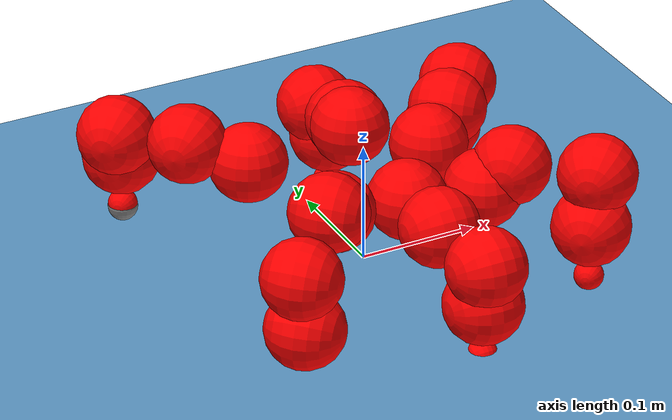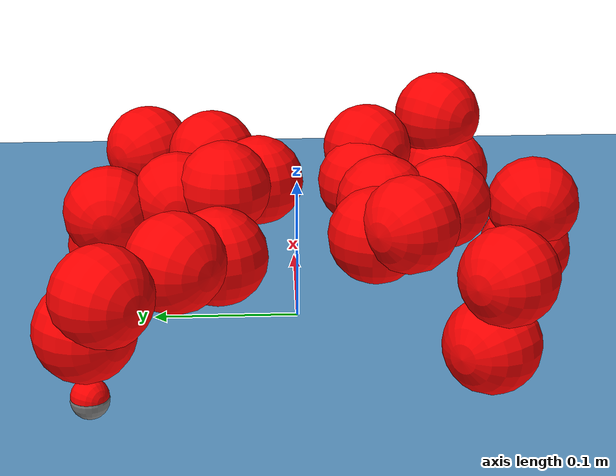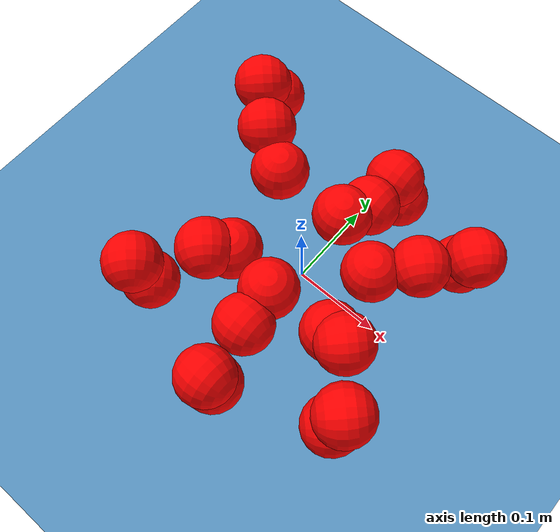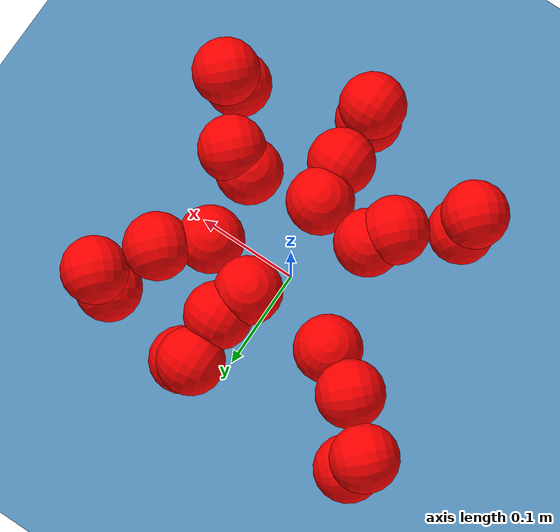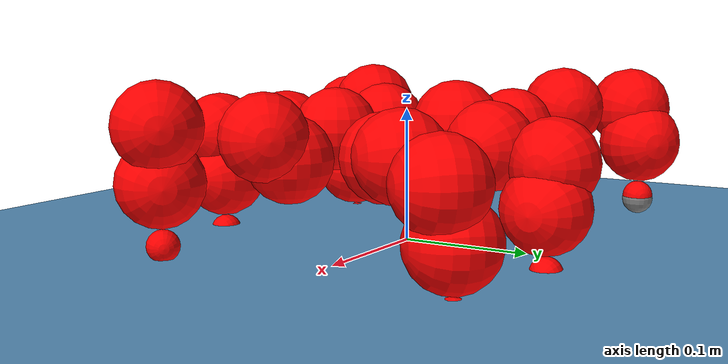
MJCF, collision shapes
<mujoco model="Golem">
  <compiler angle="radian" assetdir="assets" balanceinertia="true" inertiafromgeom="false"/>

  <option timestep="0.005" density="1.2" viscosity="2e-05"/>

  <size nkey="1"/>

  <visual>
    <quality shadowsize="8192"/>
    <map shadowclip="0.5"/>
  </visual>

  <default>
    <default class="/">
      <joint armature="0.01" damping="0.01" frictionloss="0.01"/>
      <geom contype="0" conaffinity="0" group="1" solref="-1000 -80"/>
      <site size="0.01 0.005 0.005" group="5"/>
      <general forcelimited="true" biastype="affine" gainprm="25" biasprm="0 -25 -0.5"/>
      <default class="visual">
        <geom type="mesh" group="2"/>
      </default>
      <default class="collision">
        <geom group="3"/>
      </default>
      <default class="foot">
        <geom size="0.01 0 0" condim="6" group="4" priority="1" solimp="0.015 1 0.01"/>
      </default>
      <default class="reward_collision_sphere">
        <geom group="5" rgba="1 0 0 1"/>
      </default>
    </default>
  </default>

  <asset>
    <texture type="skybox" colorspace="auto" name="//unnamed_texture_0" builtin="gradient" rgb1="0.95 0.95 0.95" rgb2="0.95 0.95 0.95" width="100" height="600"/>
    <texture type="2d" colorspace="auto" name="texplane" builtin="checker" rgb1="0.345 0.575 0.748" rgb2="0.345 0.575 0.748" markrgb="1 1 1" width="512" height="512"/>
    <material name="MatPlane" class="/" texture="texplane" texuniform="true" texrepeat="2 2" specular="0.9"/>
    <mesh name="body" class="/" file="body.stl" scale="0.001 0.001 0.001"/>
    <mesh name="coxa" class="/" file="coxa.stl" scale="0.001 0.001 0.001"/>
    <mesh name="femur" class="/" file="femur.stl" scale="0.001 0.001 0.001"/>
    <mesh name="tibia" class="/" file="tibia.stl" scale="0.001 0.001 0.001"/>
    <mesh name="tarsus" class="/" file="tarsus.stl" scale="0.001 0.001 0.001"/>
  </asset>

  <worldbody>
    <geom name="floor" class="/" size="100 100 0.125" type="plane" group="0" material="MatPlane"/>
    <light name="toplight_shadow" class="/" pos="0 0 5" dir="0.0990148 0.0990148 -0.990148" type="directional" ambient="0.04 0.04 0.04" diffuse="0.55 0.55 0.55" specular="0.12 0.12 0.12"/>
    <light name="toplight_fill" class="/" pos="0 0 5" dir="0.0990148 0.0990148 -0.990148" type="directional" castshadow="false" ambient="0.04 0.04 0.04" diffuse="0.3 0.3 0.3" specular="0.08 0.08 0.08"/>
    <body name="trunk" pos="-0.000608319 0.000537153 -0.00679955" quat="0.999961 0.00411516 0.00228996 0.00751833">
      <inertial pos="-0.00753947 0.000884932 -0.00549037" quat="0.999998 0.00107901 -0.00137745 0.000850683" mass="1.54979" diaginertia="0.00011572 0.000874549 0.0508172"/>
      <joint name="//unnamed_joint_0" type="free"/>
      <geom name="//unnamed_geom_1" class="/" pos="0 0 0.0899315" quat="1 0 0 0" type="mesh" rgba="0.9 0.9 0.9 1" mesh="body"/>
      <site name="imu" class="/" pos="-0.0302663 0.0571457 0.133645" size="0.00804948"/>
      <camera name="track" class="/" pos="0 -1.18861 0" quat="0.707107 0.707107 0 0" mode="trackcom"/>
      <camera name="ego_camera" class="/" pos="0.0539969 0 0.140518" quat="-0.5 -0.5 0.5 0.5"/>
      <body name="coxa_RR" pos="-0.060381 -0.058577 0.0896412" quat="0.383238 -0.00350694 0.00803674 -0.923608">
        <inertial pos="0.00277215 0.00132174 -0.0138245" quat="0.998106 0.0506751 0.0304258 0.0170287" mass="0.0924836" diaginertia="0.000102284 0.000593971 0.0464595"/>
        <joint name="coxa_joint_RR" class="/" pos="0 0 0" axis="-0.0088304 0.0193768 -0.999773" range="-2.85869 3.46023" armature="0.00800037" damping="0" frictionloss="0.00338456"/>
        <geom name="//unnamed_geom_2" class="/" type="mesh" rgba="0.2 0.2 0.2 1" mesh="coxa"/>
        <geom name="//unnamed_geom_3" class="reward_collision_sphere" size="0.0321979" pos="-0.0124608 0 0"/>
        <body name="femur_RR" pos="0.0132002 0.00268077 0.014076" quat="0.499842 -0.501141 0.501255 0.497754">
          <inertial pos="-0.000305264 -0.00242797 0.00627763" quat="0.999837 0.00876517 0.00420454 0.015211" mass="0.0994522" diaginertia="0.000107003 0.000635667 0.0596443"/>
          <joint name="femur_joint_RR" class="/" pos="0 0 0" axis="0.0354987 -0.0360143 -0.998721" range="-3.45892 3.08356" armature="0.0138622" damping="0.0579324" frictionloss="0.0112005"/>
          <geom name="//unnamed_geom_4" class="/" type="mesh" rgba="0.9 0.9 0.9 1" mesh="femur"/>
          <geom name="//unnamed_geom_5" class="reward_collision_sphere" size="0.0321979"/>
          <body name="tibia_RR" pos="0.0134002 -0.0768037 0.00300724" quat="0.000658325 0.999978 -0.00191344 -0.00629678">
            <inertial pos="-0.014484 -0.0112437 0.00101435" quat="0.999824 -0.00442273 0.00882142 0.0159324" mass="0.0863002" diaginertia="0.000137288 0.000754338 0.0654994"/>
            <joint name="tibia_joint_RR" class="/" pos="0 0 0" axis="-0.0441565 0.0686337 0.996664" range="-3.46776 3.07949" armature="0.0131714" damping="0.0646369" frictionloss="0.0102007"/>
            <geom name="//unnamed_geom_6" class="/" type="mesh" rgba="0.2 0.2 0.2 1" mesh="tibia"/>
            <geom name="//unnamed_geom_7" class="reward_collision_sphere" size="0.0321979"/>
            <body name="tarsus_RR" pos="0.0502722 -0.00998787 -0.00141647" quat="0.99999 -0.00193763 0.00213383 0.00329004">
              <inertial pos="0.0230874 0.0046293 -0.00469185" quat="0.500026 0.49431 0.509603 0.495919" mass="0.0941048" diaginertia="9.27742e-05 0.00072913 0.04025"/>
              <joint name="tarsus_joint_RR" class="/" pos="0 0 0" axis="0.0725121 -0.00831017 0.997333" range="-2.93749 3.24374" armature="0.0103259" damping="0" frictionloss="0.00570604"/>
              <geom name="//unnamed_geom_8" class="/" type="mesh" rgba="0.9 0.9 0.9 1" mesh="tarsus"/>
              <geom name="foot_1" class="foot" size="0.00558601" pos="0.0465204 0 0" quat="0 -0.707107 0 0.707107"/>
              <geom name="//unnamed_geom_10" class="reward_collision_sphere" size="0.0321979"/>
              <geom name="//unnamed_geom_11" class="reward_collision_sphere" size="0.0120742" pos="0.0446513 0 0"/>
              <site name="foot_1" class="foot" pos="0.0465204 0 0" quat="0 -0.707107 0 0.707107" size="0.00804948"/>
            </body>
          </body>
        </body>
      </body>
      <body name="coxa_RM" pos="0.00653038 -0.0716713 0.0898697" quat="0.703734 -0.0051066 -0.00399807 -0.710434">
        <inertial pos="-0.0101125 0.015275 -0.00824462" quat="0.999825 0.00860704 -0.0108955 0.0125737" mass="0.13568" diaginertia="0.000163029 0.000839808 0.0615573"/>
        <joint name="coxa_joint_RM" class="/" pos="0 0 0" axis="-0.0546607 0.0523349 -0.997133" range="-3.12539 2.849" armature="0.00179077" damping="0.0137795" frictionloss="0.013296"/>
        <geom name="//unnamed_geom_12" class="/" type="mesh" rgba="0.2 0.2 0.2 1" mesh="coxa"/>
        <geom name="//unnamed_geom_13" class="reward_collision_sphere" size="0.0321979" pos="-0.0124608 0 0"/>
        <body name="femur_RM" pos="0.0307583 0.00477193 -0.00392377" quat="0.499873 -0.499963 0.499374 0.500789">
          <inertial pos="-0.0121209 -0.00681456 -0.00441741" quat="0.999429 0.0317419 0.0101465 0.00565106" mass="0.0762297" diaginertia="0.000124464 0.000689801 0.0510387"/>
          <joint name="femur_joint_RM" class="/" pos="0 0 0" axis="-0.030129 0.0290416 -0.999124" range="-2.93084 3.19022" armature="0.0102145" damping="0" frictionloss="0.00298383"/>
          <geom name="//unnamed_geom_14" class="/" type="mesh" rgba="0.9 0.9 0.9 1" mesh="femur"/>
          <geom name="//unnamed_geom_15" class="reward_collision_sphere" size="0.0321979"/>
          <body name="tibia_RM" pos="0.00413807 -0.0628734 0.00590604" quat="-0.000509748 0.999997 -0.000772616 0.00222023">
            <inertial pos="-0.00899949 0.00298506 0.0154774" quat="0.99723 0.0378449 0.048887 -0.0413655" mass="0.105294" diaginertia="9.62222e-05 0.000690322 0.0434577"/>
            <joint name="tibia_joint_RM" class="/" pos="0 0 0" axis="-0.000466062 0.00209929 0.999998" range="-3.25801 3.32833" armature="0.00241949" damping="0" frictionloss="0.00109769"/>
            <geom name="//unnamed_geom_16" class="/" type="mesh" rgba="0.2 0.2 0.2 1" mesh="tibia"/>
            <geom name="//unnamed_geom_17" class="reward_collision_sphere" size="0.0321979"/>
            <body name="tarsus_RM" pos="0.0350433 -0.00454147 -0.000639526" quat="1 5.42237e-05 -9.60562e-05 -9.49434e-05">
              <inertial pos="0.0120796 -0.00140464 0.00473737" quat="0.500025 0.453244 0.542655 0.50007" mass="0.0956616" diaginertia="0.000106963 0.000648909 0.0627659"/>
              <joint name="tarsus_joint_RM" class="/" pos="0 0 0" axis="-0.00498895 -0.000896409 0.999987" range="-3.46879 2.92997" armature="0.00128934" damping="0.0104671" frictionloss="0.00680266"/>
              <geom name="//unnamed_geom_18" class="/" type="mesh" rgba="0.9 0.9 0.9 1" mesh="tarsus"/>
              <geom name="foot_2" class="foot" size="0.00319305" pos="0.0465204 0 0" quat="0 -0.707107 0 0.707107"/>
              <geom name="//unnamed_geom_20" class="reward_collision_sphere" size="0.0321979"/>
              <geom name="//unnamed_geom_21" class="reward_collision_sphere" size="0.0120742" pos="0.0446513 0 0"/>
              <site name="foot_2" class="foot" pos="0.0465204 0 0" quat="0 -0.707107 0 0.707107" size="0.00804948"/>
            </body>
          </body>
        </body>
      </body>
      <body name="coxa_RF" pos="0.0887529 -0.0595628 0.0755841" quat="0.923859 0.000153016 -0.000499381 -0.382732">
        <inertial pos="0.0133909 0.0179929 -0.0122532" quat="0.997871 -0.0362083 0.0348651 0.0415633" mass="0.113162" diaginertia="0.000102597 0.000677599 0.0544203"/>
        <joint name="coxa_joint_RF" class="/" pos="0 0 0" axis="0.0157595 0.00603721 -0.999858" stiffness="0.000948682" range="-2.94863 2.81668" armature="0.0129001" damping="0" frictionloss="0.00996684"/>
        <geom name="//unnamed_geom_22" class="/" type="mesh" rgba="0.2 0.2 0.2 1" mesh="coxa"/>
        <geom name="//unnamed_geom_23" class="reward_collision_sphere" size="0.0321979" pos="-0.0124608 0 0"/>
        <body name="femur_RF" pos="0.00696406 0.0120871 0.0176936" quat="0.501251 -0.504867 0.493983 0.499837">
          <inertial pos="-0.000507544 0.013249 -0.0158814" quat="0.996599 -0.0739396 0.0236031 -0.027683" mass="0.115414" diaginertia="0.000144802 0.000912049 0.0602248"/>
          <joint name="femur_joint_RF" class="/" pos="0 0 0" axis="0.0396786 0.014041 -0.999114" range="-3.39433 3.13402" armature="0.00495755" damping="0.0581615" frictionloss="0.0144282"/>
          <geom name="//unnamed_geom_24" class="/" type="mesh" rgba="0.9 0.9 0.9 1" mesh="femur"/>
          <geom name="//unnamed_geom_25" class="reward_collision_sphere" size="0.0321979"/>
          <body name="tibia_RF" pos="-0.00880502 -0.0715473 -0.0100805" quat="-0.00643356 0.999978 0.000682363 0.00137478">
            <inertial pos="0.00153181 -0.0110446 0.00871931" quat="0.998024 0.00652245 0.0491503 -0.0386006" mass="0.100913" diaginertia="0.000119262 0.000809885 0.0646105"/>
            <joint name="tibia_joint_RF" class="/" pos="0 0 0" axis="-0.0117715 -0.0750484 0.99711" range="-3.0118 3.17183" armature="0.0118868" damping="0" frictionloss="0.00792868"/>
            <geom name="//unnamed_geom_26" class="/" type="mesh" rgba="0.2 0.2 0.2 1" mesh="tibia"/>
            <geom name="//unnamed_geom_27" class="reward_collision_sphere" size="0.0321979"/>
            <body name="tarsus_RF" pos="0.0415416 -0.00128831 0.0108319" quat="0.999969 -0.0016629 -0.00597889 -0.00485819">
              <inertial pos="0.0405608 -0.000348378 -0.017642" quat="0.503006 0.443177 0.528117 0.521221" mass="0.143071" diaginertia="0.000119134 0.000950002 0.0632123"/>
              <joint name="tarsus_joint_RF" class="/" pos="0 0 0" axis="-0.0015978 0.082255 0.99661" range="-3.47048 2.99975" armature="0.00784643" damping="0" frictionloss="0.00300103"/>
              <geom name="//unnamed_geom_28" class="/" type="mesh" rgba="0.9 0.9 0.9 1" mesh="tarsus"/>
              <geom name="foot_3" class="foot" size="0.00573527" pos="0.0465204 0 0" quat="0 -0.707107 0 0.707107"/>
              <geom name="//unnamed_geom_30" class="reward_collision_sphere" size="0.0321979"/>
              <geom name="//unnamed_geom_31" class="reward_collision_sphere" size="0.0120742" pos="0.0446513 0 0"/>
              <site name="foot_3" class="foot" pos="0.0465204 0 0" quat="0 -0.707107 0 0.707107" size="0.00804948"/>
            </body>
          </body>
        </body>
      </body>
      <body name="coxa_LR" pos="-0.0834616 0.0621977 0.0864894" quat="0.380651 0.00120884 0.00769048 0.924686">
        <inertial pos="-0.0154323 -0.001398 0.0118958" quat="0.997633 0.0268514 -0.0166871 -0.0610629" mass="0.100816" diaginertia="0.000115654 0.000720571 0.0532365"/>
        <joint name="coxa_joint_LR" class="/" pos="0 0 0" axis="-0.0201717 0.0789885 -0.996671" stiffness="0.0235194" range="-3.01492 3.05851" armature="0.0120934" damping="0.0415185" frictionloss="0.00882733"/>
        <geom name="//unnamed_geom_32" class="/" type="mesh" rgba="0.2 0.2 0.2 1" mesh="coxa"/>
        <geom name="//unnamed_geom_33" class="reward_collision_sphere" size="0.0321979" pos="-0.0124608 0 0"/>
        <body name="femur_LR" pos="0.0348033 0.0100837 0.0144293" quat="0.505153 -0.494577 0.501576 0.498633">
          <inertial pos="-0.00853505 0.00477461 -0.00181631" quat="0.999951 0.00883931 0.00436646 0.000308952" mass="0.11674" diaginertia="0.000128629 0.000780383 0.0502484"/>
          <joint name="femur_joint_LR" class="/" pos="0 0 0" axis="0.00387637 -0.00571342 0.999976" range="-3.34469 2.78179" armature="0.00884083" damping="0" frictionloss="0.00106942"/>
          <geom name="//unnamed_geom_34" class="/" type="mesh" rgba="0.9 0.9 0.9 1" mesh="femur"/>
          <geom name="//unnamed_geom_35" class="reward_collision_sphere" size="0.0321979"/>
          <body name="tibia_LR" pos="0.00195388 -0.0594743 0.000447663" quat="0.00175921 0.999997 -0.000814352 -0.00131814">
            <inertial pos="-0.00740106 0.00615851 -0.00567224" quat="0.999354 -0.020558 0.0279595 -0.00935789" mass="0.127066" diaginertia="0.000133074 0.000666486 0.0592798"/>
            <joint name="tibia_joint_LR" class="/" pos="0 0 0" axis="0.00215729 0.00309257 -0.999993" stiffness="0.032683" range="-3.28992 3.44466" armature="0.015248" damping="0" frictionloss="0.012362"/>
            <geom name="//unnamed_geom_36" class="/" type="mesh" rgba="0.2 0.2 0.2 1" mesh="tibia"/>
            <geom name="//unnamed_geom_37" class="reward_collision_sphere" size="0.0321979"/>
            <body name="tarsus_LR" pos="0.0260568 0.00203154 0.0150836" quat="0.999994 0.00134723 0.00241391 -0.00221779">
              <inertial pos="0.0219327 0.00861856 0.0012074" quat="0.497296 0.50966 0.490977 0.501881" mass="0.0950328" diaginertia="0.000113315 0.000759596 0.049041"/>
              <joint name="tarsus_joint_LR" class="/" pos="0 0 0" axis="-0.00719791 0.0348162 -0.999368" stiffness="0.0481182" range="-3.46041 3.14333" armature="0.00771322" damping="0.0915264" frictionloss="0.0059928"/>
              <geom name="//unnamed_geom_38" class="/" type="mesh" rgba="0.9 0.9 0.9 1" mesh="tarsus"/>
              <geom name="foot_4" class="foot" size="0.0123245" pos="0.0465204 0 0" quat="0.707107 0 -0.707107 0"/>
              <geom name="//unnamed_geom_40" class="reward_collision_sphere" size="0.0321979"/>
              <geom name="//unnamed_geom_41" class="reward_collision_sphere" size="0.0120742" pos="0.0446513 0 0"/>
              <site name="foot_4" class="foot" pos="0.0465204 0 0" quat="0.707107 0 -0.707107 0" size="0.00804948"/>
            </body>
          </body>
        </body>
      </body>
      <body name="coxa_LM" pos="0.0143546 0.062095 0.0984279" quat="0.701599 0.00436028 -0.000910082 0.712558">
        <inertial pos="0.00936032 -0.000468595 -0.0116054" quat="0.999759 -0.0168447 0.0137303 0.00301007" mass="0.089365" diaginertia="7.52628e-05 0.000570578 0.0372949"/>
        <joint name="coxa_joint_LM" class="/" pos="0 0 0" axis="-0.00735761 -0.00290363 -0.999969" range="-2.85221 3.26059" armature="0.0137486" damping="0" frictionloss="0.00244335"/>
        <geom name="//unnamed_geom_42" class="/" type="mesh" rgba="0.2 0.2 0.2 1" mesh="coxa"/>
        <geom name="//unnamed_geom_43" class="reward_collision_sphere" size="0.0321979" pos="-0.0124608 0 0"/>
        <body name="femur_LM" pos="0.0193391 -0.0125611 -0.0124265" quat="0.499999 -0.500008 0.499919 0.500074">
          <inertial pos="-0.000390346 0.0129128 0.000645807" quat="0.998335 -0.0351483 -0.00990213 0.0446527" mass="0.147164" diaginertia="0.000164144 0.000870673 0.0640669"/>
          <joint name="femur_joint_LM" class="/" pos="0 0 0" axis="-0.00190677 0.0489174 0.998801" range="-3.27532 3.21904" armature="0.0127482" damping="0" frictionloss="0.00320496"/>
          <geom name="//unnamed_geom_44" class="/" type="mesh" rgba="0.9 0.9 0.9 1" mesh="femur"/>
          <geom name="//unnamed_geom_45" class="reward_collision_sphere" size="0.0321979"/>
          <body name="tibia_LM" pos="0.00980553 -0.0477894 0.000350414" quat="-0.0015464 0.999997 0.000494522 0.00197759">
            <inertial pos="0.0165967 -0.017955 -0.00439684" quat="0.999997 0.000139139 -0.00142032 0.00181046" mass="0.0796372" diaginertia="0.000134788 0.000665465 0.0480621"/>
            <joint name="tibia_joint_LM" class="/" pos="0 0 0" axis="-0.000893854 0.00107696 -0.999999" range="-3.40453 3.14542" armature="0.00862123" damping="0.0120986" frictionloss="0.0125335"/>
            <geom name="//unnamed_geom_46" class="/" type="mesh" rgba="0.2 0.2 0.2 1" mesh="tibia"/>
            <geom name="//unnamed_geom_47" class="reward_collision_sphere" size="0.0321979"/>
            <body name="tarsus_LM" pos="0.0297851 -0.0015629 0.0111707" quat="0.999999 0.00126281 -0.00079616 -0.000488696">
              <inertial pos="0.0338233 0.0054585 0.000444514" quat="0.486929 0.514386 0.506405 0.491794" mass="0.111783" diaginertia="0.000109326 0.000696592 0.0419473"/>
              <joint name="tarsus_joint_LM" class="/" pos="0 0 0" axis="-0.066575 0.024172 -0.997489" stiffness="0.0233475" range="-3.2895 3.40058" armature="0.00814531" damping="0" frictionloss="0.0137812"/>
              <geom name="//unnamed_geom_48" class="/" type="mesh" rgba="0.9 0.9 0.9 1" mesh="tarsus"/>
              <geom name="foot_5" class="foot" size="0.00652901" pos="0.0465204 0 0" quat="0.707107 0 -0.707107 0"/>
              <geom name="//unnamed_geom_50" class="reward_collision_sphere" size="0.0321979"/>
              <geom name="//unnamed_geom_51" class="reward_collision_sphere" size="0.0120742" pos="0.0446513 0 0"/>
              <site name="foot_5" class="foot" pos="0.0465204 0 0" quat="0.707107 0 -0.707107 0" size="0.00804948"/>
            </body>
          </body>
        </body>
      </body>
      <body name="coxa_LF" pos="0.0817389 0.0335957 0.0803052" quat="0.922494 0.000431961 -0.00363521 0.385995">
        <inertial pos="0.00455861 0.0130599 0.00536634" quat="0.999416 -0.0132092 -0.0173204 0.0263302" mass="0.118689" diaginertia="0.000144664 0.00102931 0.0645945"/>
        <joint name="coxa_joint_LF" class="/" pos="0 0 0" axis="0.00906996 0.00659514 -0.999937" stiffness="0.00619485" range="-2.88717 3.30954" armature="0.00727598" damping="0.0497666" frictionloss="0.00377463"/>
        <geom name="//unnamed_geom_52" class="/" type="mesh" rgba="0.2 0.2 0.2 1" mesh="coxa"/>
        <geom name="//unnamed_geom_53" class="reward_collision_sphere" size="0.0321979" pos="-0.0124608 0 0"/>
        <body name="femur_LF" pos="0.0371958 -0.00224033 0.00664217" quat="0.499568 -0.504922 0.498259 0.497216">
          <inertial pos="-0.000111922 0.000553135 0.00466295" quat="0.996169 -0.0196223 -0.0851011 0.00439031" mass="0.107069" diaginertia="0.000138048 0.0009045 0.0639104"/>
          <joint name="femur_joint_LF" class="/" pos="0 0 0" axis="0.0179439 -0.0524044 0.998465" stiffness="0.0105714" range="-3.1998 3.33762" armature="0.00961145" damping="0" frictionloss="0.0152694"/>
          <geom name="//unnamed_geom_54" class="/" type="mesh" rgba="0.9 0.9 0.9 1" mesh="femur"/>
          <geom name="//unnamed_geom_55" class="reward_collision_sphere" size="0.0321979"/>
          <body name="tibia_LF" pos="0.00993007 -0.0607063 0.00736056" quat="0.000759844 1 0.000277751 -0.000570724">
            <inertial pos="-0.00508888 0.00482607 0.00278601" quat="0.998638 -0.0492258 -0.0158001 0.00699905" mass="0.0891467" diaginertia="0.000136667 0.000845377 0.0626617"/>
            <joint name="tibia_joint_LF" class="/" pos="0 0 0" axis="-0.0538869 -0.00528198 -0.998533" range="-2.79607 3.07533" armature="0.00322857" damping="0" frictionloss="0.0130524"/>
            <geom name="//unnamed_geom_56" class="/" type="mesh" rgba="0.2 0.2 0.2 1" mesh="tibia"/>
            <geom name="//unnamed_geom_57" class="reward_collision_sphere" size="0.0321979"/>
            <body name="tarsus_LF" pos="0.0380139 -0.00882632 -0.0105235" quat="0.999999 0.000633953 0.000957896 -0.000568318">
              <inertial pos="0.0344971 -0.000369133 -0.0169226" quat="0.500014 0.502708 0.498937 0.498329" mass="0.124576" diaginertia="0.000123945 0.00083073 0.0576299"/>
              <joint name="tarsus_joint_LF" class="/" pos="0 0 0" axis="0.0460582 -0.0481906 -0.997776" range="-3.15531 2.90989" armature="0.00751608" damping="0.0907262" frictionloss="0.00610395"/>
              <geom name="//unnamed_geom_58" class="/" type="mesh" rgba="0.9 0.9 0.9 1" mesh="tarsus"/>
              <geom name="foot_6" class="foot" size="0.00871438" pos="0.0465204 0 0" quat="0.707107 0 -0.707107 0"/>
              <geom name="//unnamed_geom_60" class="reward_collision_sphere" size="0.0321979"/>
              <geom name="//unnamed_geom_61" class="reward_collision_sphere" size="0.0120742" pos="0.0446513 0 0"/>
              <site name="foot_6" class="foot" pos="0.0465204 0 0" quat="0.707107 0 -0.707107 0" size="0.00804948"/>
            </body>
          </body>
        </body>
      </body>
    </body>
  </worldbody>

  <contact>
    <pair class="/" geom1="floor" geom2="foot_1" name="//unnamed_contact_0"/>
    <pair class="/" geom1="floor" geom2="foot_2" name="//unnamed_contact_1"/>
    <pair class="/" geom1="floor" geom2="foot_3" name="//unnamed_contact_2"/>
    <pair class="/" geom1="floor" geom2="foot_4" name="//unnamed_contact_3"/>
    <pair class="/" geom1="floor" geom2="foot_5" name="//unnamed_contact_4"/>
    <pair class="/" geom1="floor" geom2="foot_6" name="//unnamed_contact_5"/>
  </contact>

  <actuator>
    <general name="coxa_joint_RR" class="/" joint="coxa_joint_RR" forcerange="-2.99505 2.99505" gainprm="28.7691" biasprm="0 -28.7691 -0.570305"/>
    <general name="femur_joint_RR" class="/" joint="femur_joint_RR" forcerange="-3.78518 3.78518" gainprm="28.7691" biasprm="0 -28.7691 -0.570305"/>
    <general name="tibia_joint_RR" class="/" joint="tibia_joint_RR" forcerange="-7.37772 7.37772" gainprm="28.7691" biasprm="0 -28.7691 -0.570305"/>
    <general name="tarsus_joint_RR" class="/" joint="tarsus_joint_RR" forcerange="-4.57022 4.57022" gainprm="28.7691" biasprm="0 -28.7691 -0.570305"/>
    <general name="coxa_joint_RM" class="/" joint="coxa_joint_RM" forcerange="-2.95733 2.95733" gainprm="28.7691" biasprm="0 -28.7691 -0.570305"/>
    <general name="femur_joint_RM" class="/" joint="femur_joint_RM" forcerange="-2.67431 2.67431" gainprm="28.7691" biasprm="0 -28.7691 -0.570305"/>
    <general name="tibia_joint_RM" class="/" joint="tibia_joint_RM" forcerange="-8.02133 8.02133" gainprm="28.7691" biasprm="0 -28.7691 -0.570305"/>
    <general name="tarsus_joint_RM" class="/" joint="tarsus_joint_RM" forcerange="-2.08357 2.08357" gainprm="28.7691" biasprm="0 -28.7691 -0.570305"/>
    <general name="coxa_joint_RF" class="/" joint="coxa_joint_RF" forcerange="-2.40593 2.40593" gainprm="28.7691" biasprm="0 -28.7691 -0.570305"/>
    <general name="femur_joint_RF" class="/" joint="femur_joint_RF" forcerange="-9.36274 9.36274" gainprm="28.7691" biasprm="0 -28.7691 -0.570305"/>
    <general name="tibia_joint_RF" class="/" joint="tibia_joint_RF" forcerange="-7.9231 7.9231" gainprm="28.7691" biasprm="0 -28.7691 -0.570305"/>
    <general name="tarsus_joint_RF" class="/" joint="tarsus_joint_RF" forcerange="-5.17233 5.17233" gainprm="28.7691" biasprm="0 -28.7691 -0.570305"/>
    <general name="coxa_joint_LR" class="/" joint="coxa_joint_LR" forcerange="-3.60468 3.60468" gainprm="28.7691" biasprm="0 -28.7691 -0.570305"/>
    <general name="femur_joint_LR" class="/" joint="femur_joint_LR" forcerange="-8.67233 8.67233" gainprm="28.7691" biasprm="0 -28.7691 -0.570305"/>
    <general name="tibia_joint_LR" class="/" joint="tibia_joint_LR" forcerange="-7.97152 7.97152" gainprm="28.7691" biasprm="0 -28.7691 -0.570305"/>
    <general name="tarsus_joint_LR" class="/" joint="tarsus_joint_LR" forcerange="-6.92243 6.92243" gainprm="28.7691" biasprm="0 -28.7691 -0.570305"/>
    <general name="coxa_joint_LM" class="/" joint="coxa_joint_LM" forcerange="-5.74942 5.74942" gainprm="28.7691" biasprm="0 -28.7691 -0.570305"/>
    <general name="femur_joint_LM" class="/" joint="femur_joint_LM" forcerange="-5.72826 5.72826" gainprm="28.7691" biasprm="0 -28.7691 -0.570305"/>
    <general name="tibia_joint_LM" class="/" joint="tibia_joint_LM" forcerange="-9.64844 9.64844" gainprm="28.7691" biasprm="0 -28.7691 -0.570305"/>
    <general name="tarsus_joint_LM" class="/" joint="tarsus_joint_LM" forcerange="-5.72236 5.72236" gainprm="28.7691" biasprm="0 -28.7691 -0.570305"/>
    <general name="coxa_joint_LF" class="/" joint="coxa_joint_LF" forcerange="-2.64994 2.64994" gainprm="28.7691" biasprm="0 -28.7691 -0.570305"/>
    <general name="femur_joint_LF" class="/" joint="femur_joint_LF" forcerange="-2.56854 2.56854" gainprm="28.7691" biasprm="0 -28.7691 -0.570305"/>
    <general name="tibia_joint_LF" class="/" joint="tibia_joint_LF" forcerange="-6.28177 6.28177" gainprm="28.7691" biasprm="0 -28.7691 -0.570305"/>
    <general name="tarsus_joint_LF" class="/" joint="tarsus_joint_LF" forcerange="-7.4873 7.4873" gainprm="28.7691" biasprm="0 -28.7691 -0.570305"/>
  </actuator>

  <sensor>
    <gyro site="imu" name="imu_angular_velocity"/>
    <velocimeter site="imu" name="imu_linear_velocity"/>
    <framelinvel objtype="site" objname="foot_1" name="foot_1_global_linear_velocity"/>
    <framelinvel objtype="site" objname="foot_2" name="foot_2_global_linear_velocity"/>
    <framelinvel objtype="site" objname="foot_3" name="foot_3_global_linear_velocity"/>
    <framelinvel objtype="site" objname="foot_4" name="foot_4_global_linear_velocity"/>
    <framelinvel objtype="site" objname="foot_5" name="foot_5_global_linear_velocity"/>
    <framelinvel objtype="site" objname="foot_6" name="foot_6_global_linear_velocity"/>
  </sensor>

  <keyframe>
    <key name="home" qpos="0 0 0.1457 1 0 0 0 0 0 0 0 0 0 0 0 0 0 0 0 0 0 0 0 0 0 0 0 0 0 0 0"/>
  </keyframe>
</mujoco>
